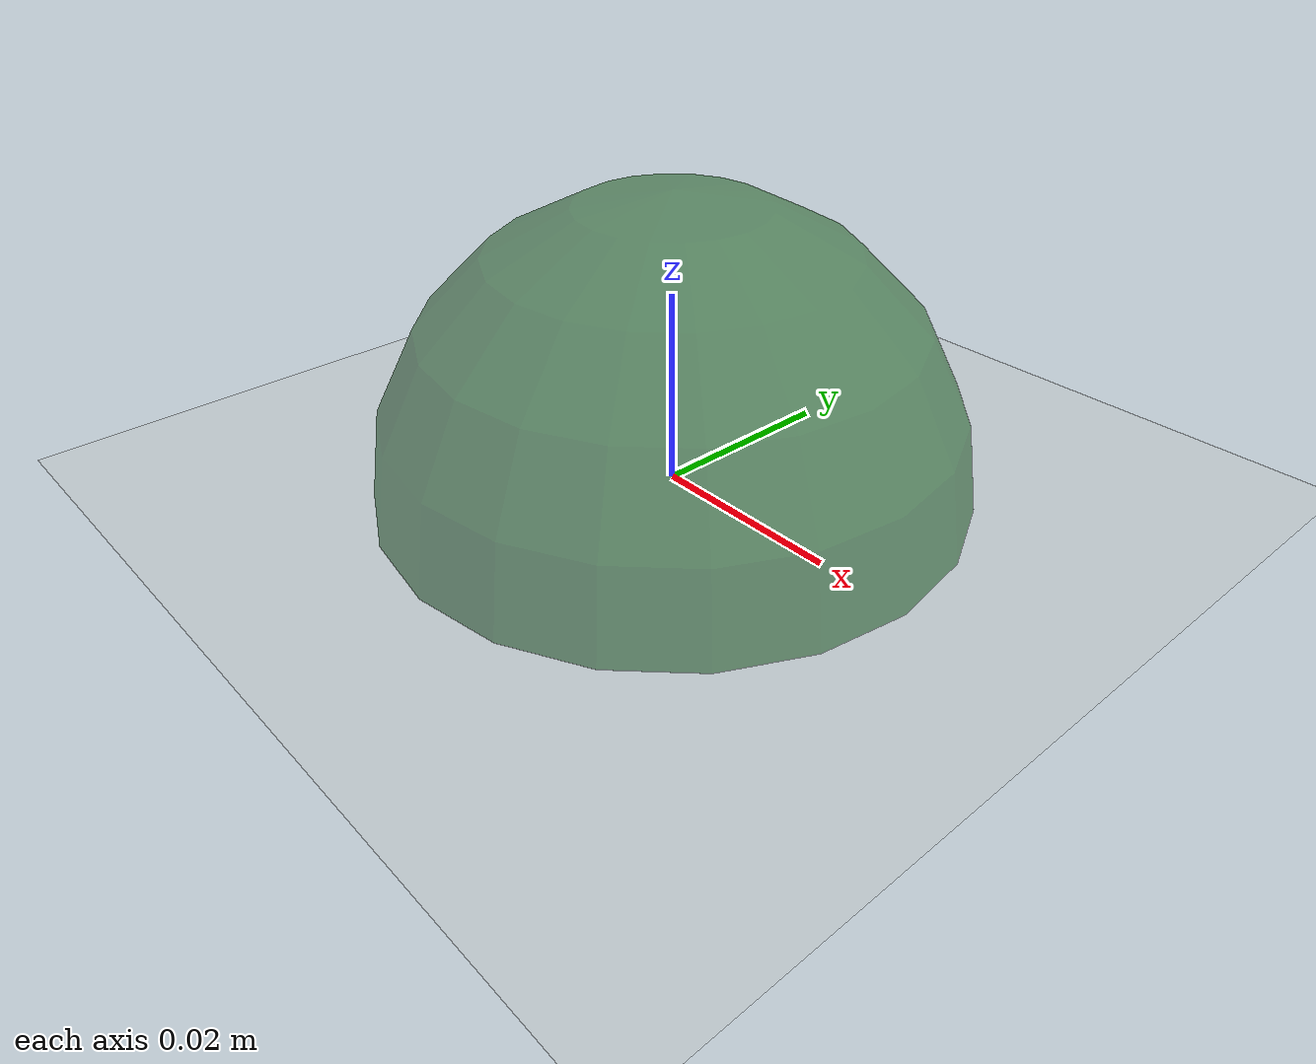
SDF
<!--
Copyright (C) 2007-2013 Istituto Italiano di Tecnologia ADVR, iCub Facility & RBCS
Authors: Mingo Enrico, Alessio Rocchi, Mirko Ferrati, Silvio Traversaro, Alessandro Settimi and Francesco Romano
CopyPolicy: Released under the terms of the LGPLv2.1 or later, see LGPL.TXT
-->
<sdf version="1.5">
 <world name="default">
  <include><uri>model://sun</uri></include>
  <include><uri>model://ground_plane</uri></include>
  <include><uri>model://rightHandSphere</uri></include>
  <include><uri>model://startSphere</uri></include>
  <include><uri>model://rightHandTargetSphere</uri></include>
  <include><uri>model://rightHandWaypointSphere</uri></include>
  <include><uri>model://thinPlate</uri></include>
 </world>
</sdf>

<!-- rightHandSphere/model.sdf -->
<sdf version="1.5">
  <model name="rightHandSphere">
    <static>true</static>
    <link name="link">

      <visual name="visual">
        <pose>0.0 0.0 0.0 0 0 0</pose>
        <geometry>
          <sphere>
              <radius>0.03</radius>
          </sphere>
        </geometry>

        <material>
            <ambient> 0.0 0.3 0.0 0.5 </ambient>
            <diffuse> 0.0 0.3 0.0 0.5 </diffuse>
        </material>

        <transparency>0.4</transparency>

      </visual>

    </link>
    <plugin name="yarp_model_move" filename="yarp_model_move/libyarp_model_move.so"/>

  </model>
</sdf>

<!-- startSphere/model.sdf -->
<sdf version="1.5">
  <model name="startSphere">
    <static>true</static>
    <link name="link">

      <visual name="visual">
        <pose>0.0 0.0 0.0 0 0 0</pose>
        <geometry>
          <sphere>
              <radius>0.03</radius>
          </sphere>
        </geometry>

        <material>
            <ambient>   0.0 1.0 0.0 0.6 </ambient>
            <diffuse>   0.0 1.0 0.0 0.6 </diffuse>
        </material>

        <transparency>0.4</transparency>

      </visual>

    </link>
    <plugin name="yarp_model_move" filename="yarp_model_move/libyarp_model_move.so"/>

  </model>
</sdf>

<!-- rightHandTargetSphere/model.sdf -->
<sdf version="1.5">
  <model name="rightHandTargetSphere">
    <static>true</static>
    <link name="link">

      <visual name="visual">
        <pose>0.0 0.0 0.0 0 0 0</pose>
        <geometry>
          <sphere>
              <radius>0.03</radius>
          </sphere>
        </geometry>

        <material>
            <ambient> 1.0 0.0 0.0 0.6 </ambient>
            <diffuse> 1.0 0.0 0.0 0.6 </diffuse>
        </material>

        <transparency>0.4</transparency>

      </visual>

    </link>
    <plugin name="yarp_model_move" filename="yarp_model_move/libyarp_model_move.so"/>

  </model>
</sdf>

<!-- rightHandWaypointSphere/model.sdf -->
<sdf version="1.5">
  <model name="rightHandWaypointSphere">
    <static>true</static>
    <link name="link">

      <visual name="visual">
        <pose>0.0 0.0 0.0 0 0 0</pose>
        <geometry>
          <sphere>
              <radius>0.02</radius>
          </sphere>
        </geometry>

        <material>
            <ambient> 0.0 0.0 1.0 0.6 </ambient>
            <diffuse> 0.0 0.0 1.0 0.6 </diffuse>
        </material>

        <transparency>0.4</transparency>

      </visual>

    </link>
    <plugin name="yarp_model_move" filename="yarp_model_move/libyarp_model_move.so"/>

  </model>
</sdf>

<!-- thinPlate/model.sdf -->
<sdf version="1.5">
  <model name="thinPlate">
    <static>true</static>
    <link name="link">
        <pose>0.6 -0.2 1.12 0 0 0</pose>

        <collision name="collision">
            <geometry>
                <box>
                    <size>0.2 0.6 0.01</size>
                </box>
            </geometry>
        </collision>

        <visual name="visual">
            <geometry>
                  <box>
                        <size>0.2 0.6 0.01</size>
                  </box>
            </geometry>

            <material>
                    <ambient> 1.0 1.0 0.0 0.6 </ambient>
                    <diffuse> 1.0 1.0 0.0 0.6 </diffuse>
            </material>

            <transparency>0.5</transparency>

        </visual>

    </link>
    <plugin name="yarp_model_move" filename="yarp_model_move/libyarp_model_move.so"/>

  </model>
</sdf>
